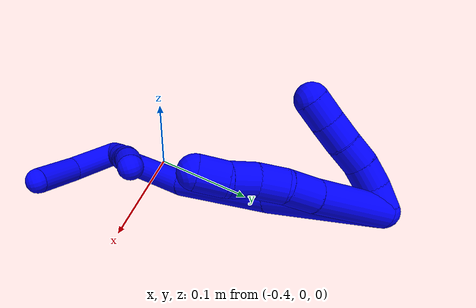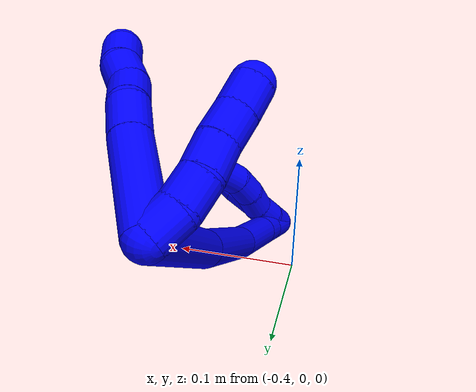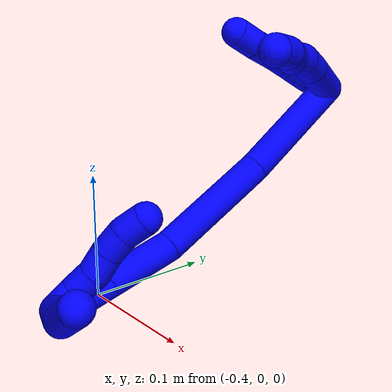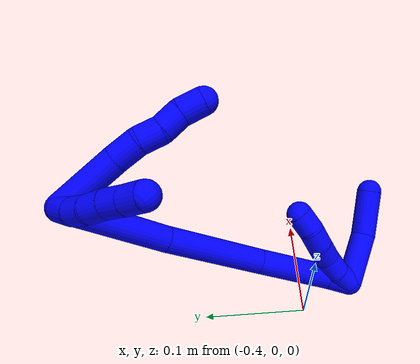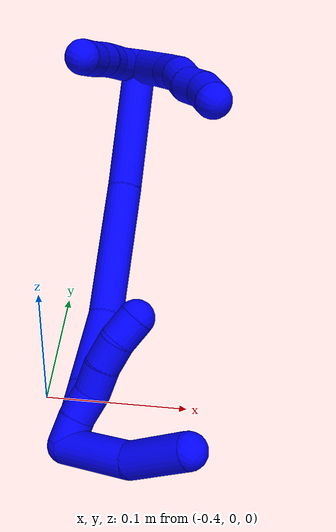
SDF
<sdf version="1.7">
 <world name="default">
  <plugin name="TubeGeneratorPlugin" filename="libtube_generator_plugin.so"/>
  <model name="photoneo_s_sensor">
   <static>1</static>
   <pose>0 0 2 1.57079 1.57079 3.14159</pose>
   <link name="link">
    <inertial><mass>0.1</mass></inertial>
    <sensor name="sensor" type="depth">
     <update_rate>30</update_rate>
     <camera>
      <horizontal_fov>1.22</horizontal_fov>
      <image><width>1920</width><height>1200</height><format>B8G8R8</format></image>
      <clip><near>0.1</near><far>4</far></clip>
      <depth_camera><output>points</output></depth_camera>
     </camera>
     <plugin name="camera_plugin" filename="libgazebo_ros_depth_camera.so">
      <baseline>0.2</baseline>
      <alwaysOn>1</alwaysOn>
      <updateRate>0.0</updateRate>
      <cameraName>camera_ir</cameraName>
      <imageTopicName>/camera/color/image_raw</imageTopicName>
      <cameraInfoTopicName>/camera/color/camera_info</cameraInfoTopicName>
      <depthImageTopicName>/camera/depth/image_raw</depthImageTopicName>
      <depthImageCameraInfoTopicName>/camera/depth/camera_info</depthImageCameraInfoTopicName>
      <pointCloudTopicName>/camera/depth/points</pointCloudTopicName>
      <frameName>fr_optical</frameName>
      <pointCloudCutoff>0.1</pointCloudCutoff>
      <pointCloudCutoffMax>2.0</pointCloudCutoffMax>
      <distortionK1>0</distortionK1>
      <distortionK2>0</distortionK2>
      <distortionK3>0</distortionK3>
      <distortionT1>0</distortionT1>
      <distortionT2>0</distortionT2>
      <CxPrime>0</CxPrime>
      <Cx>0</Cx>
      <Cy>0</Cy>
      <focalLength>0</focalLength>
      <hackBaseline>0</hackBaseline>
     </plugin>
    </sensor>
   </link>
  </model>
  <gravity>0 0 -9.8</gravity>
  <magnetic_field>6e-06 2.3e-05 -4.2e-05</magnetic_field>
  <atmosphere type="adiabatic"/>
  <physics name="default_physics" default="0" type="ode">
   <max_step_size>0.003</max_step_size>
   <real_time_factor>1</real_time_factor>
   <real_time_update_rate>1000</real_time_update_rate>
   <max_contacts>10000</max_contacts>
   <ode>
    <solver>
     <type>quick</type>
     <iters>100</iters>
     <sor>1.3</sor>
     <use_dynamic_moi_rescaling>0</use_dynamic_moi_rescaling>
    </solver>
    <constraints>
     <contact_max_correcting_vel>0</contact_max_correcting_vel>
     <contact_surface_layer>0.001</contact_surface_layer>
     <cfm>0</cfm>
     <erp>0.2</erp>
    </constraints>
   </ode>
  </physics>
  <scene><ambient>0.4 0.4 0.4 1</ambient><background>0.7 0.7 0.7 1</background><shadows>0</shadows></scene>
  <audio><device>default</device></audio>
  <spherical_coordinates>
   <surface_model>EARTH_WGS84</surface_model>
   <latitude_deg>0</latitude_deg>
   <longitude_deg>0</longitude_deg>
   <elevation>0</elevation>
   <heading_deg>0</heading_deg>
  </spherical_coordinates>
  <model name="bin">
   <static>1</static>
   <link name="bottom">
    <collision name="collision-bottom">
     <pose>0 0 -0.01 0 -0 0</pose>
     <geometry><box><size>0.8 0.6 0.02</size></box></geometry>
     <surface>
      <friction><ode><mu>100</mu><mu2>100</mu2></ode></friction>
      <contact><collide_bitmask>65535</collide_bitmask></contact>
     </surface>
    </collision>
   </link>
   <link name="west_wall">
    <collision name="collision-west_wall">
     <pose>-0.41 0 0.1 0 -0 0</pose>
     <geometry><box><size>0.02 0.6 0.2</size></box></geometry>
     <surface>
      <friction><ode><mu>100</mu><mu2>100</mu2></ode></friction>
      <contact><collide_bitmask>65535</collide_bitmask></contact>
     </surface>
    </collision>
   </link>
   <link name="east_wall">
    <collision name="collision-east_wall">
     <pose>0.41 0 0.1 0 -0 0</pose>
     <geometry><box><size>0.02 0.6 0.2</size></box></geometry>
     <surface>
      <friction><ode><mu>100</mu><mu2>100</mu2></ode></friction>
      <contact><collide_bitmask>65535</collide_bitmask></contact>
     </surface>
    </collision>
   </link>
   <link name="south_wall">
    <collision name="collision-south_wall">
     <pose>0 -0.31 0.1 0 -0 0</pose>
     <geometry><box><size>0.8 0.02 0.2</size></box></geometry>
     <surface>
      <friction><ode><mu>100</mu><mu2>100</mu2></ode></friction>
      <contact><collide_bitmask>65535</collide_bitmask></contact>
     </surface>
    </collision>
   </link>
   <link name="north_wall">
    <collision name="collision-north_wall">
     <pose>0 0.31 0.1 0 -0 0</pose>
     <geometry><box><size>0.8 0.02 0.2</size></box></geometry>
     <surface>
      <friction><ode><mu>100</mu><mu2>100</mu2></ode></friction>
      <contact><collide_bitmask>65535</collide_bitmask></contact>
     </surface>
    </collision>
   </link>
  </model>
  <model name="1">
   <static>0</static>
   <link name="1">
    <collision name="collision-cylinder-e_1_2_8">
     <pose>0.014229 0.008596 -0.026409 -2.8269 0.473465 -1.97816</pose>
     <geometry><cylinder><radius>0.0125</radius><length>0.062411</length></cylinder></geometry>
     <surface>
      <friction><ode><mu>1.16</mu><mu2>1.16</mu2><slip1>0</slip1><slip2>0</slip2></ode></friction>
      <contact><ode><kp>1e+06</kp><kd>1</kd><max_vel>0</max_vel><min_depth>0.001</min_depth></ode></contact>
     </surface>
    </collision>
    <visual name="visual-cylinder-e_1_2_8">
     <pose>0.014229 0.008596 -0.026409 -2.8269 0.473465 -1.97816</pose>
     <geometry><cylinder><radius>0.0125</radius><length>0.062411</length></cylinder></geometry>
     <material><ambient>0 0 1 1</ambient></material>
    </visual>
    <collision name="collision-cylinder-e_2_8_9">
     <pose>0.03478 0.020358 -0.062675 -2.83086 0.548206 -2.12513</pose>
     <geometry><cylinder><radius>0.0125</radius><length>0.024261</length></cylinder></geometry>
     <surface>
      <friction><ode><mu>1.16</mu><mu2>1.16</mu2><slip1>0</slip1><slip2>0</slip2></ode></friction>
      <contact><ode><kp>1e+06</kp><kd>1</kd><max_vel>0</max_vel><min_depth>0.001</min_depth></ode></contact>
     </surface>
    </collision>
    <visual name="visual-cylinder-e_2_8_9">
     <pose>0.03478 0.020358 -0.062675 -2.83086 0.548206 -2.12513</pose>
     <geometry><cylinder><radius>0.0125</radius><length>0.024261</length></cylinder></geometry>
     <material><ambient>0 0 1 1</ambient></material>
    </visual>
    <collision name="collision-cylinder-e_3_9_10">
     <pose>0.046317 0.023478 -0.081621 3.13664 0.520973 3.123</pose>
     <geometry><cylinder><radius>0.0125</radius><length>0.020959</length></cylinder></geometry>
     <surface>
      <friction><ode><mu>1.16</mu><mu2>1.16</mu2><slip1>0</slip1><slip2>0</slip2></ode></friction>
      <contact><ode><kp>1e+06</kp><kd>1</kd><max_vel>0</max_vel><min_depth>0.001</min_depth></ode></contact>
     </surface>
    </collision>
    <visual name="visual-cylinder-e_3_9_10">
     <pose>0.046317 0.023478 -0.081621 3.13664 0.520973 3.123</pose>
     <geometry><cylinder><radius>0.0125</radius><length>0.020959</length></cylinder></geometry>
     <material><ambient>0 0 1 1</ambient></material>
    </visual>
    <collision name="collision-cylinder-e_4_10_11">
     <pose>0.054755 0.025771 -0.100299 -2.90248 0.315523 -1.84805</pose>
     <geometry><cylinder><radius>0.0125</radius><length>0.020764</length></cylinder></geometry>
     <surface>
      <friction><ode><mu>1.16</mu><mu2>1.16</mu2><slip1>0</slip1><slip2>0</slip2></ode></friction>
      <contact><ode><kp>1e+06</kp><kd>1</kd><max_vel>0</max_vel><min_depth>0.001</min_depth></ode></contact>
     </surface>
    </collision>
    <visual name="visual-cylinder-e_4_10_11">
     <pose>0.054755 0.025771 -0.100299 -2.90248 0.315523 -1.84805</pose>
     <geometry><cylinder><radius>0.0125</radius><length>0.020764</length></cylinder></geometry>
     <material><ambient>0 0 1 1</ambient></material>
    </visual>
    <collision name="collision-cylinder-e_5_11_6">
     <pose>0.06355 0.028443 -0.119135 -3.10546 0.54206 -3.01172</pose>
     <geometry><cylinder><radius>0.0125</radius><length>0.021605</length></cylinder></geometry>
     <surface>
      <friction><ode><mu>1.16</mu><mu2>1.16</mu2><slip1>0</slip1><slip2>0</slip2></ode></friction>
      <contact><ode><kp>1e+06</kp><kd>1</kd><max_vel>0</max_vel><min_depth>0.001</min_depth></ode></contact>
     </surface>
    </collision>
    <visual name="visual-cylinder-e_5_11_6">
     <pose>0.06355 0.028443 -0.119135 -3.10546 0.54206 -3.01172</pose>
     <geometry><cylinder><radius>0.0125</radius><length>0.021605</length></cylinder></geometry>
     <material><ambient>0 0 1 1</ambient></material>
    </visual>
    <collision name="collision-cylinder-e_1_2_12">
     <pose>0.009968 0.000664 -0.000435 -2.15074 1.49138 -2.08282</pose>
     <geometry><cylinder><radius>0.0125</radius><length>0.02</length></cylinder></geometry>
     <surface>
      <friction><ode><mu>1.16</mu><mu2>1.16</mu2><slip1>0</slip1><slip2>0</slip2></ode></friction>
      <contact><ode><kp>1e+06</kp><kd>1</kd><max_vel>0</max_vel><min_depth>0.001</min_depth></ode></contact>
     </surface>
    </collision>
    <visual name="visual-cylinder-e_1_2_12">
     <pose>0.009968 0.000664 -0.000435 -2.15074 1.49138 -2.08282</pose>
     <geometry><cylinder><radius>0.0125</radius><length>0.02</length></cylinder></geometry>
     <material><ambient>0 0 1 1</ambient></material>
    </visual>
    <collision name="collision-cylinder-e_2_12_13">
     <pose>0.029397 0.00337 -0.003388 -2.46012 1.24061 -2.22017</pose>
     <geometry><cylinder><radius>0.0125</radius><length>0.02</length></cylinder></geometry>
     <surface>
      <friction><ode><mu>1.16</mu><mu2>1.16</mu2><slip1>0</slip1><slip2>0</slip2></ode></friction>
      <contact><ode><kp>1e+06</kp><kd>1</kd><max_vel>0</max_vel><min_depth>0.001</min_depth></ode></contact>
     </surface>
    </collision>
    <visual name="visual-cylinder-e_2_12_13">
     <pose>0.029397 0.00337 -0.003388 -2.46012 1.24061 -2.22017</pose>
     <geometry><cylinder><radius>0.0125</radius><length>0.02</length></cylinder></geometry>
     <material><ambient>0 0 1 1</ambient></material>
    </visual>
    <collision name="collision-cylinder-e_3_13_14">
     <pose>0.047684 0.007435 -0.010147 -2.69661 1.08157 -2.42099</pose>
     <geometry><cylinder><radius>0.0125</radius><length>0.02</length></cylinder></geometry>
     <surface>
      <friction><ode><mu>1.16</mu><mu2>1.16</mu2><slip1>0</slip1><slip2>0</slip2></ode></friction>
      <contact><ode><kp>1e+06</kp><kd>1</kd><max_vel>0</max_vel><min_depth>0.001</min_depth></ode></contact>
     </surface>
    </collision>
    <visual name="visual-cylinder-e_3_13_14">
     <pose>0.047684 0.007435 -0.010147 -2.69661 1.08157 -2.42099</pose>
     <geometry><cylinder><radius>0.0125</radius><length>0.02</length></cylinder></geometry>
     <material><ambient>0 0 1 1</ambient></material>
    </visual>
    <collision name="collision-cylinder-e_4_14_15">
     <pose>0.065735 0.010856 -0.017988 -2.771 1.17436 -2.59248</pose>
     <geometry><cylinder><radius>0.0125</radius><length>0.02</length></cylinder></geometry>
     <surface>
      <friction><ode><mu>1.16</mu><mu2>1.16</mu2><slip1>0</slip1><slip2>0</slip2></ode></friction>
      <contact><ode><kp>1e+06</kp><kd>1</kd><max_vel>0</max_vel><min_depth>0.001</min_depth></ode></contact>
     </surface>
    </collision>
    <visual name="visual-cylinder-e_4_14_15">
     <pose>0.065735 0.010856 -0.017988 -2.771 1.17436 -2.59248</pose>
     <geometry><cylinder><radius>0.0125</radius><length>0.02</length></cylinder></geometry>
     <material><ambient>0 0 1 1</ambient></material>
    </visual>
    <collision name="collision-cylinder-e_5_15_5">
     <pose>0.084081 0.014215 -0.025187 -2.64296 1.1485 -2.39174</pose>
     <geometry><cylinder><radius>0.0125</radius><length>0.02</length></cylinder></geometry>
     <surface>
      <friction><ode><mu>1.16</mu><mu2>1.16</mu2><slip1>0</slip1><slip2>0</slip2></ode></friction>
      <contact><ode><kp>1e+06</kp><kd>1</kd><max_vel>0</max_vel><min_depth>0.001</min_depth></ode></contact>
     </surface>
    </collision>
    <visual name="visual-cylinder-e_5_15_5">
     <pose>0.084081 0.014215 -0.025187 -2.64296 1.1485 -2.39174</pose>
     <geometry><cylinder><radius>0.0125</radius><length>0.02</length></cylinder></geometry>
     <material><ambient>0 0 1 1</ambient></material>
    </visual>
    <collision name="collision-cylinder-e_1_2_16">
     <pose>0.017816 -0.038319 -0.026981 2.18429 0.363291 0.680397</pose>
     <geometry><cylinder><radius>0.0125</radius><length>0.100275</length></cylinder></geometry>
     <surface>
      <friction><ode><mu>1.16</mu><mu2>1.16</mu2><slip1>0</slip1><slip2>0</slip2></ode></friction>
      <contact><ode><kp>1e+06</kp><kd>1</kd><max_vel>0</max_vel><min_depth>0.001</min_depth></ode></contact>
     </surface>
    </collision>
    <visual name="visual-cylinder-e_1_2_16">
     <pose>0.017816 -0.038319 -0.026981 2.18429 0.363291 0.680397</pose>
     <geometry><cylinder><radius>0.0125</radius><length>0.100275</length></cylinder></geometry>
     <material><ambient>0 0 1 1</ambient></material>
    </visual>
    <collision name="collision-cylinder-e_2_16_17">
     <pose>0.057053 -0.111809 -0.082113 2.24577 0.44383 0.878051</pose>
     <geometry><cylinder><radius>0.0125</radius><length>0.099766</length></cylinder></geometry>
     <surface>
      <friction><ode><mu>1.16</mu><mu2>1.16</mu2><slip1>0</slip1><slip2>0</slip2></ode></friction>
      <contact><ode><kp>1e+06</kp><kd>1</kd><max_vel>0</max_vel><min_depth>0.001</min_depth></ode></contact>
     </surface>
    </collision>
    <visual name="visual-cylinder-e_2_16_17">
     <pose>0.057053 -0.111809 -0.082113 2.24577 0.44383 0.878051</pose>
     <geometry><cylinder><radius>0.0125</radius><length>0.099766</length></cylinder></geometry>
     <material><ambient>0 0 1 1</ambient></material>
    </visual>
    <collision name="collision-cylinder-e_3_17_18">
     <pose>0.094804 -0.163919 -0.125023 2.28757 0.628559 1.24064</pose>
     <geometry><cylinder><radius>0.0125</radius><length>0.05555</length></cylinder></geometry>
     <surface>
      <friction><ode><mu>1.16</mu><mu2>1.16</mu2><slip1>0</slip1><slip2>0</slip2></ode></friction>
      <contact><ode><kp>1e+06</kp><kd>1</kd><max_vel>0</max_vel><min_depth>0.001</min_depth></ode></contact>
     </surface>
    </collision>
    <visual name="visual-cylinder-e_3_17_18">
     <pose>0.094804 -0.163919 -0.125023 2.28757 0.628559 1.24064</pose>
     <geometry><cylinder><radius>0.0125</radius><length>0.05555</length></cylinder></geometry>
     <material><ambient>0 0 1 1</ambient></material>
    </visual>
    <collision name="collision-cylinder-e_4_18_19">
     <pose>0.117213 -0.187144 -0.145261 2.28757 0.629899 1.24278</pose>
     <geometry><cylinder><radius>0.0125</radius><length>0.020639</length></cylinder></geometry>
     <surface>
      <friction><ode><mu>1.16</mu><mu2>1.16</mu2><slip1>0</slip1><slip2>0</slip2></ode></friction>
      <contact><ode><kp>1e+06</kp><kd>1</kd><max_vel>0</max_vel><min_depth>0.001</min_depth></ode></contact>
     </surface>
    </collision>
    <visual name="visual-cylinder-e_4_18_19">
     <pose>0.117213 -0.187144 -0.145261 2.28757 0.629899 1.24278</pose>
     <geometry><cylinder><radius>0.0125</radius><length>0.020639</length></cylinder></geometry>
     <material><ambient>0 0 1 1</ambient></material>
    </visual>
    <collision name="collision-cylinder-e_5_19_1">
     <pose>0.131376 -0.200201 -0.156225 2.2518 0.747913 1.37731</pose>
     <geometry><cylinder><radius>0.0125</radius><length>0.023771</length></cylinder></geometry>
     <surface>
      <friction><ode><mu>1.16</mu><mu2>1.16</mu2><slip1>0</slip1><slip2>0</slip2></ode></friction>
      <contact><ode><kp>1e+06</kp><kd>1</kd><max_vel>0</max_vel><min_depth>0.001</min_depth></ode></contact>
     </surface>
    </collision>
    <visual name="visual-cylinder-e_5_19_1">
     <pose>0.131376 -0.200201 -0.156225 2.2518 0.747913 1.37731</pose>
     <geometry><cylinder><radius>0.0125</radius><length>0.023771</length></cylinder></geometry>
     <material><ambient>0 0 1 1</ambient></material>
    </visual>
    <collision name="collision-cylinder-e_1_1_20">
     <pose>0.13618 -0.195798 -0.18568 -2.70541 -0.123348 0.543508</pose>
     <geometry><cylinder><radius>0.0125</radius><length>0.053295</length></cylinder></geometry>
     <surface>
      <friction><ode><mu>1.16</mu><mu2>1.16</mu2><slip1>0</slip1><slip2>0</slip2></ode></friction>
      <contact><ode><kp>1e+06</kp><kd>1</kd><max_vel>0</max_vel><min_depth>0.001</min_depth></ode></contact>
     </surface>
    </collision>
    <visual name="visual-cylinder-e_1_1_20">
     <pose>0.13618 -0.195798 -0.18568 -2.70541 -0.123348 0.543508</pose>
     <geometry><cylinder><radius>0.0125</radius><length>0.053295</length></cylinder></geometry>
     <material><ambient>0 0 1 1</ambient></material>
    </visual>
    <collision name="collision-cylinder-e_2_20_4">
     <pose>0.129912 -0.168758 -0.226519 -2.38679 -0.128391 0.32154</pose>
     <geometry><cylinder><radius>0.0125</radius><length>0.046705</length></cylinder></geometry>
     <surface>
      <friction><ode><mu>1.16</mu><mu2>1.16</mu2><slip1>0</slip1><slip2>0</slip2></ode></friction>
      <contact><ode><kp>1e+06</kp><kd>1</kd><max_vel>0</max_vel><min_depth>0.001</min_depth></ode></contact>
     </surface>
    </collision>
    <visual name="visual-cylinder-e_2_20_4">
     <pose>0.129912 -0.168758 -0.226519 -2.38679 -0.128391 0.32154</pose>
     <geometry><cylinder><radius>0.0125</radius><length>0.046705</length></cylinder></geometry>
     <material><ambient>0 0 1 1</ambient></material>
    </visual>
    <collision name="collision-cylinder-e_1_1_21">
     <pose>0.135706 -0.198016 -0.159318 -1.30972 -0.384743 0.296942</pose>
     <geometry><cylinder><radius>0.0125</radius><length>0.02</length></cylinder></geometry>
     <surface>
      <friction><ode><mu>1.16</mu><mu2>1.16</mu2><slip1>0</slip1><slip2>0</slip2></ode></friction>
      <contact><ode><kp>1e+06</kp><kd>1</kd><max_vel>0</max_vel><min_depth>0.001</min_depth></ode></contact>
     </surface>
    </collision>
    <visual name="visual-cylinder-e_1_1_21">
     <pose>0.135706 -0.198016 -0.159318 -1.30972 -0.384743 0.296942</pose>
     <geometry><cylinder><radius>0.0125</radius><length>0.02</length></cylinder></geometry>
     <material><ambient>0 0 1 1</ambient></material>
    </visual>
    <collision name="collision-cylinder-e_2_21_22">
     <pose>0.12818 -0.179803 -0.156669 -1.54311 -0.386809 0.376497</pose>
     <geometry><cylinder><radius>0.0125</radius><length>0.02</length></cylinder></geometry>
     <surface>
      <friction><ode><mu>1.16</mu><mu2>1.16</mu2><slip1>0</slip1><slip2>0</slip2></ode></friction>
      <contact><ode><kp>1e+06</kp><kd>1</kd><max_vel>0</max_vel><min_depth>0.001</min_depth></ode></contact>
     </surface>
    </collision>
    <visual name="visual-cylinder-e_2_21_22">
     <pose>0.12818 -0.179803 -0.156669 -1.54311 -0.386809 0.376497</pose>
     <geometry><cylinder><radius>0.0125</radius><length>0.02</length></cylinder></geometry>
     <material><ambient>0 0 1 1</ambient></material>
    </visual>
    <collision name="collision-cylinder-e_3_22_23">
     <pose>0.122897 -0.160698 -0.155559 -1.48428 -0.151726 0.139179</pose>
     <geometry><cylinder><radius>0.0125</radius><length>0.02</length></cylinder></geometry>
     <surface>
      <friction><ode><mu>1.16</mu><mu2>1.16</mu2><slip1>0</slip1><slip2>0</slip2></ode></friction>
      <contact><ode><kp>1e+06</kp><kd>1</kd><max_vel>0</max_vel><min_depth>0.001</min_depth></ode></contact>
     </surface>
    </collision>
    <visual name="visual-cylinder-e_3_22_23">
     <pose>0.122897 -0.160698 -0.155559 -1.48428 -0.151726 0.139179</pose>
     <geometry><cylinder><radius>0.0125</radius><length>0.02</length></cylinder></geometry>
     <material><ambient>0 0 1 1</ambient></material>
    </visual>
    <collision name="collision-cylinder-e_4_23_24">
     <pose>0.118682 -0.141225 -0.154945 -1.59581 -0.273667 0.280511</pose>
     <geometry><cylinder><radius>0.0125</radius><length>0.02</length></cylinder></geometry>
     <surface>
      <friction><ode><mu>1.16</mu><mu2>1.16</mu2><slip1>0</slip1><slip2>0</slip2></ode></friction>
      <contact><ode><kp>1e+06</kp><kd>1</kd><max_vel>0</max_vel><min_depth>0.001</min_depth></ode></contact>
     </surface>
    </collision>
    <visual name="visual-cylinder-e_4_23_24">
     <pose>0.118682 -0.141225 -0.154945 -1.59581 -0.273667 0.280511</pose>
     <geometry><cylinder><radius>0.0125</radius><length>0.02</length></cylinder></geometry>
     <material><ambient>0 0 1 1</ambient></material>
    </visual>
    <collision name="collision-cylinder-e_5_24_3">
     <pose>0.110985 -0.12296 -0.155816 -1.64354 -0.523019 0.560549</pose>
     <geometry><cylinder><radius>0.0125</radius><length>0.02</length></cylinder></geometry>
     <surface>
      <friction><ode><mu>1.16</mu><mu2>1.16</mu2><slip1>0</slip1><slip2>0</slip2></ode></friction>
      <contact><ode><kp>1e+06</kp><kd>1</kd><max_vel>0</max_vel><min_depth>0.001</min_depth></ode></contact>
     </surface>
    </collision>
    <visual name="visual-cylinder-e_5_24_3">
     <pose>0.110985 -0.12296 -0.155816 -1.64354 -0.523019 0.560549</pose>
     <geometry><cylinder><radius>0.0125</radius><length>0.02</length></cylinder></geometry>
     <material><ambient>0 0 1 1</ambient></material>
    </visual>
    <collision name="collision-sphere-3">
     <pose>0.10599 -0.114319 -0.156446 0 -0 0</pose>
     <geometry><sphere><radius>0.0125</radius></sphere></geometry>
     <surface>
      <friction><ode><mu>1.16</mu><mu2>1.16</mu2><slip1>0</slip1><slip2>0</slip2></ode></friction>
      <contact><ode><kp>1e+06</kp><kd>1</kd><max_vel>0</max_vel><min_depth>0.001</min_depth></ode></contact>
     </surface>
    </collision>
    <visual name="visual-sphere-3">
     <pose>0.10599 -0.114319 -0.156446 0 -0 0</pose>
     <geometry><sphere><radius>0.0125</radius></sphere></geometry>
     <material><ambient>0 0 1 1</ambient></material>
    </visual>
    <collision name="collision-sphere-24">
     <pose>0.11598 -0.1316 -0.155186 0 -0 0</pose>
     <geometry><sphere><radius>0.0125</radius></sphere></geometry>
     <surface>
      <friction><ode><mu>1.16</mu><mu2>1.16</mu2><slip1>0</slip1><slip2>0</slip2></ode></friction>
      <contact><ode><kp>1e+06</kp><kd>1</kd><max_vel>0</max_vel><min_depth>0.001</min_depth></ode></contact>
     </surface>
    </collision>
    <visual name="visual-sphere-24">
     <pose>0.11598 -0.1316 -0.155186 0 -0 0</pose>
     <geometry><sphere><radius>0.0125</radius></sphere></geometry>
     <material><ambient>0 0 1 1</ambient></material>
    </visual>
    <collision name="collision-sphere-23">
     <pose>0.121385 -0.150849 -0.154705 0 -0 0</pose>
     <geometry><sphere><radius>0.0125</radius></sphere></geometry>
     <surface>
      <friction><ode><mu>1.16</mu><mu2>1.16</mu2><slip1>0</slip1><slip2>0</slip2></ode></friction>
      <contact><ode><kp>1e+06</kp><kd>1</kd><max_vel>0</max_vel><min_depth>0.001</min_depth></ode></contact>
     </surface>
    </collision>
    <visual name="visual-sphere-23">
     <pose>0.121385 -0.150849 -0.154705 0 -0 0</pose>
     <geometry><sphere><radius>0.0125</radius></sphere></geometry>
     <material><ambient>0 0 1 1</ambient></material>
    </visual>
    <collision name="collision-sphere-22">
     <pose>0.124408 -0.170546 -0.156413 0 -0 0</pose>
     <geometry><sphere><radius>0.0125</radius></sphere></geometry>
     <surface>
      <friction><ode><mu>1.16</mu><mu2>1.16</mu2><slip1>0</slip1><slip2>0</slip2></ode></friction>
      <contact><ode><kp>1e+06</kp><kd>1</kd><max_vel>0</max_vel><min_depth>0.001</min_depth></ode></contact>
     </surface>
    </collision>
    <visual name="visual-sphere-22">
     <pose>0.124408 -0.170546 -0.156413 0 -0 0</pose>
     <geometry><sphere><radius>0.0125</radius></sphere></geometry>
     <material><ambient>0 0 1 1</ambient></material>
    </visual>
    <collision name="collision-sphere-21">
     <pose>0.131953 -0.189061 -0.156926 0 -0 0</pose>
     <geometry><sphere><radius>0.0125</radius></sphere></geometry>
     <surface>
      <friction><ode><mu>1.16</mu><mu2>1.16</mu2><slip1>0</slip1><slip2>0</slip2></ode></friction>
      <contact><ode><kp>1e+06</kp><kd>1</kd><max_vel>0</max_vel><min_depth>0.001</min_depth></ode></contact>
     </surface>
    </collision>
    <visual name="visual-sphere-21">
     <pose>0.131953 -0.189061 -0.156926 0 -0 0</pose>
     <geometry><sphere><radius>0.0125</radius></sphere></geometry>
     <material><ambient>0 0 1 1</ambient></material>
    </visual>
    <collision name="collision-sphere-4">
     <pose>0.126922 -0.15289 -0.243389 0 -0 0</pose>
     <geometry><sphere><radius>0.0125</radius></sphere></geometry>
     <surface>
      <friction><ode><mu>1.16</mu><mu2>1.16</mu2><slip1>0</slip1><slip2>0</slip2></ode></friction>
      <contact><ode><kp>1e+06</kp><kd>1</kd><max_vel>0</max_vel><min_depth>0.001</min_depth></ode></contact>
     </surface>
    </collision>
    <visual name="visual-sphere-4">
     <pose>0.126922 -0.15289 -0.243389 0 -0 0</pose>
     <geometry><sphere><radius>0.0125</radius></sphere></geometry>
     <material><ambient>0 0 1 1</ambient></material>
    </visual>
    <collision name="collision-sphere-20">
     <pose>0.132902 -0.184626 -0.209649 0 -0 0</pose>
     <geometry><sphere><radius>0.0125</radius></sphere></geometry>
     <surface>
      <friction><ode><mu>1.16</mu><mu2>1.16</mu2><slip1>0</slip1><slip2>0</slip2></ode></friction>
      <contact><ode><kp>1e+06</kp><kd>1</kd><max_vel>0</max_vel><min_depth>0.001</min_depth></ode></contact>
     </surface>
    </collision>
    <visual name="visual-sphere-20">
     <pose>0.132902 -0.184626 -0.209649 0 -0 0</pose>
     <geometry><sphere><radius>0.0125</radius></sphere></geometry>
     <material><ambient>0 0 1 1</ambient></material>
    </visual>
    <collision name="collision-sphere-6">
     <pose>0.069123 0.028777 -0.128383 0 -0 0</pose>
     <geometry><sphere><radius>0.0125</radius></sphere></geometry>
     <surface>
      <friction><ode><mu>1.16</mu><mu2>1.16</mu2><slip1>0</slip1><slip2>0</slip2></ode></friction>
      <contact><ode><kp>1e+06</kp><kd>1</kd><max_vel>0</max_vel><min_depth>0.001</min_depth></ode></contact>
     </surface>
    </collision>
    <visual name="visual-sphere-6">
     <pose>0.069123 0.028777 -0.128383 0 -0 0</pose>
     <geometry><sphere><radius>0.0125</radius></sphere></geometry>
     <material><ambient>0 0 1 1</ambient></material>
    </visual>
    <collision name="collision-sphere-11">
     <pose>0.057977 0.028108 -0.109888 0 -0 0</pose>
     <geometry><sphere><radius>0.0125</radius></sphere></geometry>
     <surface>
      <friction><ode><mu>1.16</mu><mu2>1.16</mu2><slip1>0</slip1><slip2>0</slip2></ode></friction>
      <contact><ode><kp>1e+06</kp><kd>1</kd><max_vel>0</max_vel><min_depth>0.001</min_depth></ode></contact>
     </surface>
    </collision>
    <visual name="visual-sphere-11">
     <pose>0.057977 0.028108 -0.109888 0 -0 0</pose>
     <geometry><sphere><radius>0.0125</radius></sphere></geometry>
     <material><ambient>0 0 1 1</ambient></material>
    </visual>
    <collision name="collision-sphere-10">
     <pose>0.051533 0.023433 -0.09071 0 -0 0</pose>
     <geometry><sphere><radius>0.0125</radius></sphere></geometry>
     <surface>
      <friction><ode><mu>1.16</mu><mu2>1.16</mu2><slip1>0</slip1><slip2>0</slip2></ode></friction>
      <contact><ode><kp>1e+06</kp><kd>1</kd><max_vel>0</max_vel><min_depth>0.001</min_depth></ode></contact>
     </surface>
    </collision>
    <visual name="visual-sphere-10">
     <pose>0.051533 0.023433 -0.09071 0 -0 0</pose>
     <geometry><sphere><radius>0.0125</radius></sphere></geometry>
     <material><ambient>0 0 1 1</ambient></material>
    </visual>
    <collision name="collision-sphere-9">
     <pose>0.041101 0.023523 -0.072532 0 -0 0</pose>
     <geometry><sphere><radius>0.0125</radius></sphere></geometry>
     <surface>
      <friction><ode><mu>1.16</mu><mu2>1.16</mu2><slip1>0</slip1><slip2>0</slip2></ode></friction>
      <contact><ode><kp>1e+06</kp><kd>1</kd><max_vel>0</max_vel><min_depth>0.001</min_depth></ode></contact>
     </surface>
    </collision>
    <visual name="visual-sphere-9">
     <pose>0.041101 0.023523 -0.072532 0 -0 0</pose>
     <geometry><sphere><radius>0.0125</radius></sphere></geometry>
     <material><ambient>0 0 1 1</ambient></material>
    </visual>
    <collision name="collision-sphere-2">
     <geometry><sphere><radius>0.0125</radius></sphere></geometry>
     <surface>
      <friction><ode><mu>1.16</mu><mu2>1.16</mu2><slip1>0</slip1><slip2>0</slip2></ode></friction>
      <contact><ode><kp>1e+06</kp><kd>1</kd><max_vel>0</max_vel><min_depth>0.001</min_depth></ode></contact>
     </surface>
    </collision>
    <visual name="visual-sphere-2">
     <geometry><sphere><radius>0.0125</radius></sphere></geometry>
     <material><ambient>0 0 1 1</ambient></material>
    </visual>
    <collision name="collision-sphere-19">
     <pose>0.123292 -0.193431 -0.150739 0 -0 0</pose>
     <geometry><sphere><radius>0.0125</radius></sphere></geometry>
     <surface>
      <friction><ode><mu>1.16</mu><mu2>1.16</mu2><slip1>0</slip1><slip2>0</slip2></ode></friction>
      <contact><ode><kp>1e+06</kp><kd>1</kd><max_vel>0</max_vel><min_depth>0.001</min_depth></ode></contact>
     </surface>
    </collision>
    <visual name="visual-sphere-19">
     <pose>0.123292 -0.193431 -0.150739 0 -0 0</pose>
     <geometry><sphere><radius>0.0125</radius></sphere></geometry>
     <material><ambient>0 0 1 1</ambient></material>
    </visual>
    <collision name="collision-sphere-8">
     <pose>0.028458 0.017192 -0.052818 0 -0 0</pose>
     <geometry><sphere><radius>0.0125</radius></sphere></geometry>
     <surface>
      <friction><ode><mu>1.16</mu><mu2>1.16</mu2><slip1>0</slip1><slip2>0</slip2></ode></friction>
      <contact><ode><kp>1e+06</kp><kd>1</kd><max_vel>0</max_vel><min_depth>0.001</min_depth></ode></contact>
     </surface>
    </collision>
    <visual name="visual-sphere-8">
     <pose>0.028458 0.017192 -0.052818 0 -0 0</pose>
     <geometry><sphere><radius>0.0125</radius></sphere></geometry>
     <material><ambient>0 0 1 1</ambient></material>
    </visual>
    <collision name="collision-sphere-12">
     <pose>0.019937 0.001327 -0.000869 0 -0 0</pose>
     <geometry><sphere><radius>0.0125</radius></sphere></geometry>
     <surface>
      <friction><ode><mu>1.16</mu><mu2>1.16</mu2><slip1>0</slip1><slip2>0</slip2></ode></friction>
      <contact><ode><kp>1e+06</kp><kd>1</kd><max_vel>0</max_vel><min_depth>0.001</min_depth></ode></contact>
     </surface>
    </collision>
    <visual name="visual-sphere-12">
     <pose>0.019937 0.001327 -0.000869 0 -0 0</pose>
     <geometry><sphere><radius>0.0125</radius></sphere></geometry>
     <material><ambient>0 0 1 1</ambient></material>
    </visual>
    <collision name="collision-sphere-13">
     <pose>0.038857 0.005412 -0.005906 0 -0 0</pose>
     <geometry><sphere><radius>0.0125</radius></sphere></geometry>
     <surface>
      <friction><ode><mu>1.16</mu><mu2>1.16</mu2><slip1>0</slip1><slip2>0</slip2></ode></friction>
      <contact><ode><kp>1e+06</kp><kd>1</kd><max_vel>0</max_vel><min_depth>0.001</min_depth></ode></contact>
     </surface>
    </collision>
    <visual name="visual-sphere-13">
     <pose>0.038857 0.005412 -0.005906 0 -0 0</pose>
     <geometry><sphere><radius>0.0125</radius></sphere></geometry>
     <material><ambient>0 0 1 1</ambient></material>
    </visual>
    <collision name="collision-sphere-14">
     <pose>0.056511 0.009458 -0.014389 0 -0 0</pose>
     <geometry><sphere><radius>0.0125</radius></sphere></geometry>
     <surface>
      <friction><ode><mu>1.16</mu><mu2>1.16</mu2><slip1>0</slip1><slip2>0</slip2></ode></friction>
      <contact><ode><kp>1e+06</kp><kd>1</kd><max_vel>0</max_vel><min_depth>0.001</min_depth></ode></contact>
     </surface>
    </collision>
    <visual name="visual-sphere-14">
     <pose>0.056511 0.009458 -0.014389 0 -0 0</pose>
     <geometry><sphere><radius>0.0125</radius></sphere></geometry>
     <material><ambient>0 0 1 1</ambient></material>
    </visual>
    <collision name="collision-sphere-15">
     <pose>0.074959 0.012255 -0.021588 0 -0 0</pose>
     <geometry><sphere><radius>0.0125</radius></sphere></geometry>
     <surface>
      <friction><ode><mu>1.16</mu><mu2>1.16</mu2><slip1>0</slip1><slip2>0</slip2></ode></friction>
      <contact><ode><kp>1e+06</kp><kd>1</kd><max_vel>0</max_vel><min_depth>0.001</min_depth></ode></contact>
     </surface>
    </collision>
    <visual name="visual-sphere-15">
     <pose>0.074959 0.012255 -0.021588 0 -0 0</pose>
     <geometry><sphere><radius>0.0125</radius></sphere></geometry>
     <material><ambient>0 0 1 1</ambient></material>
    </visual>
    <collision name="collision-sphere-5">
     <pose>0.093202 0.016175 -0.028787 0 -0 0</pose>
     <geometry><sphere><radius>0.0125</radius></sphere></geometry>
     <surface>
      <friction><ode><mu>1.16</mu><mu2>1.16</mu2><slip1>0</slip1><slip2>0</slip2></ode></friction>
      <contact><ode><kp>1e+06</kp><kd>1</kd><max_vel>0</max_vel><min_depth>0.001</min_depth></ode></contact>
     </surface>
    </collision>
    <visual name="visual-sphere-5">
     <pose>0.093202 0.016175 -0.028787 0 -0 0</pose>
     <geometry><sphere><radius>0.0125</radius></sphere></geometry>
     <material><ambient>0 0 1 1</ambient></material>
    </visual>
    <collision name="collision-sphere-16">
     <pose>0.035633 -0.076638 -0.053963 0 -0 0</pose>
     <geometry><sphere><radius>0.0125</radius></sphere></geometry>
     <surface>
      <friction><ode><mu>1.16</mu><mu2>1.16</mu2><slip1>0</slip1><slip2>0</slip2></ode></friction>
      <contact><ode><kp>1e+06</kp><kd>1</kd><max_vel>0</max_vel><min_depth>0.001</min_depth></ode></contact>
     </surface>
    </collision>
    <visual name="visual-sphere-16">
     <pose>0.035633 -0.076638 -0.053963 0 -0 0</pose>
     <geometry><sphere><radius>0.0125</radius></sphere></geometry>
     <material><ambient>0 0 1 1</ambient></material>
    </visual>
    <collision name="collision-sphere-17">
     <pose>0.078472 -0.146981 -0.110263 0 -0 0</pose>
     <geometry><sphere><radius>0.0125</radius></sphere></geometry>
     <surface>
      <friction><ode><mu>1.16</mu><mu2>1.16</mu2><slip1>0</slip1><slip2>0</slip2></ode></friction>
      <contact><ode><kp>1e+06</kp><kd>1</kd><max_vel>0</max_vel><min_depth>0.001</min_depth></ode></contact>
     </surface>
    </collision>
    <visual name="visual-sphere-17">
     <pose>0.078472 -0.146981 -0.110263 0 -0 0</pose>
     <geometry><sphere><radius>0.0125</radius></sphere></geometry>
     <material><ambient>0 0 1 1</ambient></material>
    </visual>
    <collision name="collision-sphere-18">
     <pose>0.111135 -0.180857 -0.139783 0 -0 0</pose>
     <geometry><sphere><radius>0.0125</radius></sphere></geometry>
     <surface>
      <friction><ode><mu>1.16</mu><mu2>1.16</mu2><slip1>0</slip1><slip2>0</slip2></ode></friction>
      <contact><ode><kp>1e+06</kp><kd>1</kd><max_vel>0</max_vel><min_depth>0.001</min_depth></ode></contact>
     </surface>
    </collision>
    <visual name="visual-sphere-18">
     <pose>0.111135 -0.180857 -0.139783 0 -0 0</pose>
     <geometry><sphere><radius>0.0125</radius></sphere></geometry>
     <material><ambient>0 0 1 1</ambient></material>
    </visual>
    <collision name="collision-sphere-1">
     <pose>0.139459 -0.206971 -0.161711 0 -0 0</pose>
     <geometry><sphere><radius>0.0125</radius></sphere></geometry>
     <surface>
      <friction><ode><mu>1.16</mu><mu2>1.16</mu2><slip1>0</slip1><slip2>0</slip2></ode></friction>
      <contact><ode><kp>1e+06</kp><kd>1</kd><max_vel>0</max_vel><min_depth>0.001</min_depth></ode></contact>
     </surface>
    </collision>
    <visual name="visual-sphere-1">
     <pose>0.139459 -0.206971 -0.161711 0 -0 0</pose>
     <geometry><sphere><radius>0.0125</radius></sphere></geometry>
     <material><ambient>0 0 1 1</ambient></material>
    </visual>
    <inertial>
     <pose>0.071855 -0.084923 -0.09514 0 -0 0</pose>
     <mass>0.75</mass>
     <inertia><ixx>0.00027</ixx><ixy>0</ixy><ixz>0</ixz><iyy>9.2e-05</iyy><iyz>0</iyz><izz>-1.4e-05</izz></inertia>
    </inertial>
   </link>
   <pose>-0.356877 0.213471 0.147723 1.56109 -0.408394 -2.29742</pose>
  </model>
 </world>
</sdf>
